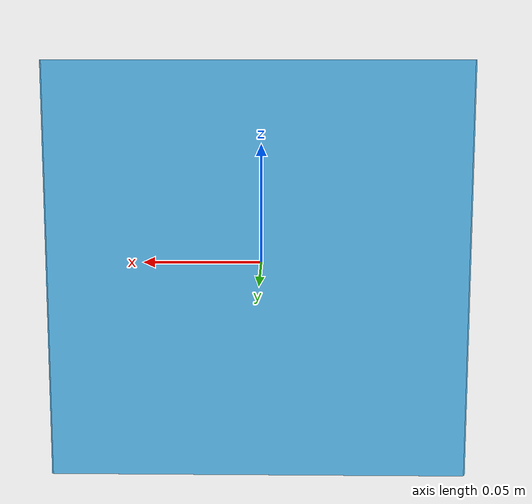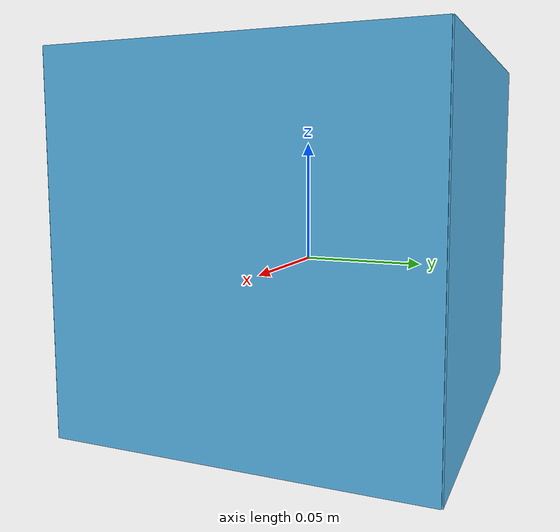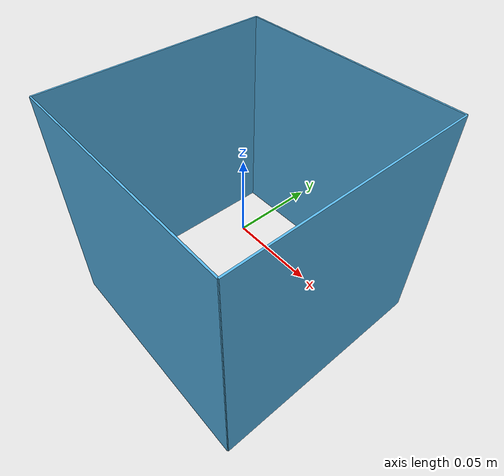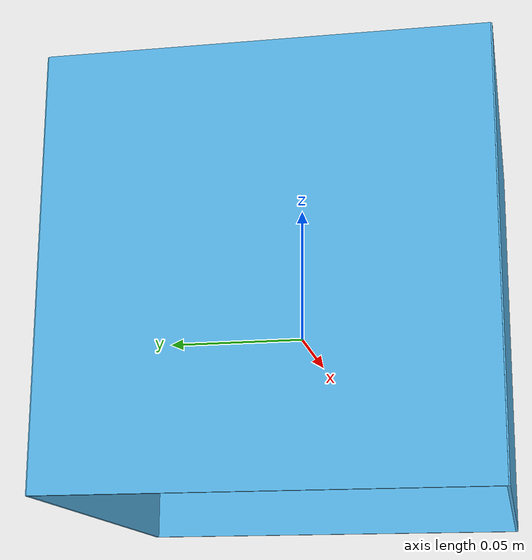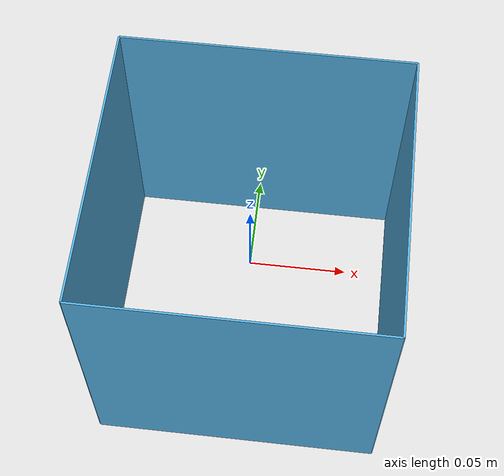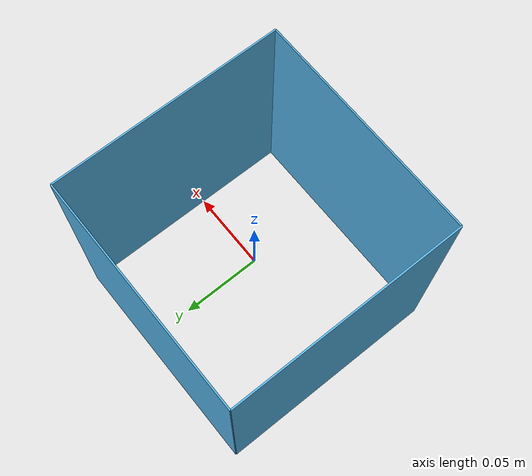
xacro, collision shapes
<?xml version="4.0"?>

<robot xmlns:xacro="http://www.ros.org/wiki/xacro">
    <xacro:include filename="$(find braccio_challenge)/urdf/basket.xacro" />
    <link name="world"/>

    <joint name="fixed" type="fixed">
            <origin xyz="0 0 0.01" rpy="0 0 0"/>
            <parent link="world"/>
            <child link="my_box"/>
    </joint>
    <link name="my_box">
        <aruco_basket t1="0" t2="1" t3="2" t4="3" l="0.15" w="0.15" h="0.15" dim_marker="0.05" m="0.05"/>
    </link>
    <gazebo reference="my_box">
    <mu1>100.0</mu1>
    <mu2>100.0</mu2>
    <minDepth>0.003</minDepth>
    <maxVel>0</maxVel>
    </gazebo>
</robot>

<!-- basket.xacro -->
<robot xmlns:xacro="http://www.ros.org/wiki/xacro">
 <xacro:macro name="aruco_basket" params="t1 t2 t3 t4 l w h dim_marker m ">
   <inertial>
      <origin xyz="0 0 0" />
      <mass value="${m}" />
      <inertia  ixx="${m*m/12.0}" ixy="0.0"  ixz="0.0"  iyy="${m*m/12.0}"  iyz="0.0"  izz="${m*m/12.0}" />
    </inertial>
    <visual>
      <origin xyz="${l/2.0+0.001} 0 -${dim_marker/2.0}"/>
      <geometry>
        <mesh filename="package://braccio_arm_gazebo/urdf/marker${t1}/meshes/Marker${t1}.dae" scale="${2.0*dim_marker} ${2.0*dim_marker} ${2.0*dim_marker}"/>
      </geometry>
    </visual>
    <visual>
      <origin xyz="${l/2.0} 0 0"/>
      <geometry>
        <box size="${0.001} ${w} ${h}" />
      </geometry>
    </visual>
    <visual>
      <geometry>
        <mesh filename="package://braccio_arm_gazebo/urdf/marker${t2}/meshes/Marker${t2}.dae" scale="${2.0*dim_marker} ${2.0*dim_marker} ${2.0*dim_marker}"/>
      </geometry>
        <origin xyz="0 -${w/2.0+0.001} -${dim_marker/2.0}"  rpy="0 0 1.57"/>
    </visual>
    <visual>
      <origin xyz="0 -${w/2.0} 0"/>
      <geometry>
        <box size="${l} 0.001 ${h}" />
      </geometry>
    </visual>
    <visual>
      <geometry>
        <mesh filename="package://braccio_arm_gazebo/urdf/marker${t3}/meshes/Marker${t3}.dae" scale="${2.0*dim_marker} ${2.0*dim_marker} ${2.0*dim_marker}"/>
      </geometry>
        <origin xyz="-${l/2.0+0.001} 0 -${dim_marker/2.0}"  rpy="0 0 3.14"/>
    </visual>
    <visual>
      <origin xyz="${-l/2.0} 0 0"/>
      <geometry>
        <box size="${0.001} ${w} ${h}" />
      </geometry>
    </visual>
   <visual>
      <geometry>
        <mesh filename="package://braccio_arm_gazebo/urdf/marker${t4}/meshes/Marker${t4}.dae" scale="${2.0*dim_marker} ${2.0*dim_marker} ${2.0*dim_marker}"/>
      </geometry>
        <origin xyz="0 ${w/2.0+0.001} ${-dim_marker/2.0}"  rpy="0 0 -1.57"/>
    </visual>
    <visual>
      <origin xyz="0 ${w/2.0} 0"/>
      <geometry>
        <box size="${l} 0.001 ${h}" />
      </geometry>
    </visual>
    <collision>
        <origin xyz="${l/2.0} 0 0"/>
        <geometry>
            <box size="${0.001} ${w} ${h}" />
        </geometry>
    </collision>
    <collision>
      <origin xyz="0 -${w/2.0} 0"/>
      <geometry>
        <box size="${l} 0.001 ${h}" />
      </geometry>
    </collision>
    <collision>
      <origin xyz="${-l/2.0} 0 0"/>
      <geometry>
        <box size="${0.001} ${w} ${h}" />
      </geometry>
    </collision>
    <collision>
      <origin xyz="0 ${w/2.0} 0"/>
      <geometry>
        <box size="${l} 0.001 ${h}" />
      </geometry>
    </collision>
</xacro:macro>
</robot>
